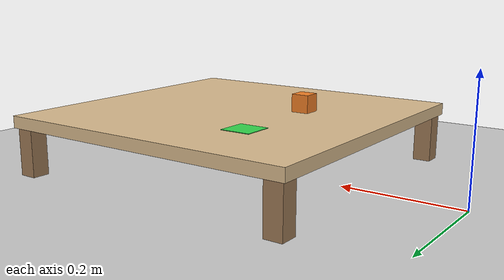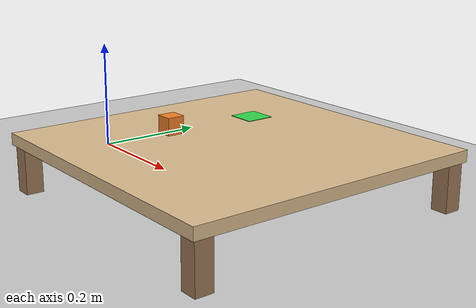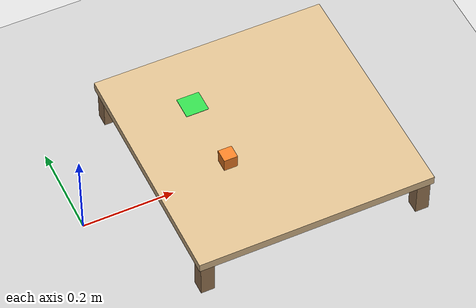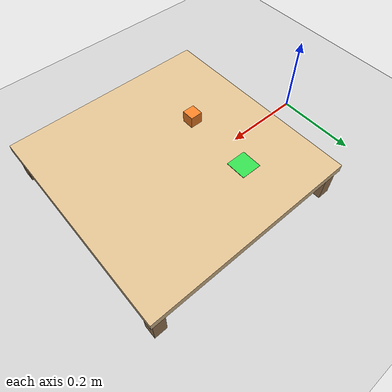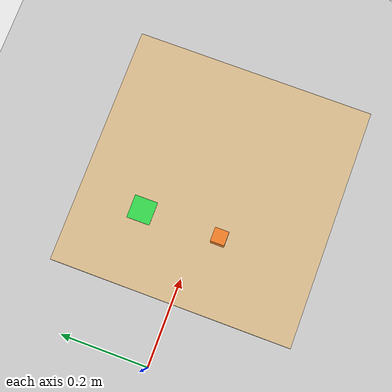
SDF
<?xml version="1.0" ?>
<sdf version="1.6">
  <world name="scara_world">
    <scene>
      <ambient>0.75 0.78 0.82 1</ambient>
      <background>0.78 0.85 0.95 1</background>
      <shadows>true</shadows>
    </scene>

    <light type="directional" name="sun">
      <cast_shadows>true</cast_shadows>
      <pose>0 0 3 0 0 0</pose>
      <diffuse>0.95 0.95 0.92 1</diffuse>
      <specular>0.25 0.25 0.25 1</specular>
      <direction>-0.4 0.3 -1</direction>
    </light>

    <physics type="ode">
      <max_step_size>0.001</max_step_size>
      <real_time_update_rate>1000</real_time_update_rate>
      <real_time_factor>1.0</real_time_factor>
      <ode>
        <solver>
          <type>quick</type>
          <iters>80</iters>
          <sor>1.2</sor>
        </solver>
        <constraints>
          <cfm>0.0</cfm>
          <erp>0.2</erp>
          <contact_max_correcting_vel>0.1</contact_max_correcting_vel>
          <contact_surface_layer>0.0005</contact_surface_layer>
        </constraints>
      </ode>
    </physics>

    <gravity>0 0 -9.81</gravity>

    <include>
      <uri>model://ground_plane</uri>
    </include>

    <!-- 工作台：台面 + 四条腿（静态） -->
    <model name="table">
      <static>true</static>
      <link name="top">
        <pose>0.40 0 0.09 0 0 0</pose>
        <collision name="c">
          <geometry><box><size>0.52 0.52 0.02</size></box></geometry>
          <surface><friction><ode><mu>0.9</mu><mu2>0.9</mu2></ode></friction></surface>
        </collision>
        <visual name="v">
          <geometry><box><size>0.52 0.52 0.02</size></box></geometry>
          <material><ambient>0.78 0.66 0.48 1</ambient><diffuse>0.86 0.74 0.56 1</diffuse></material>
        </visual>
      </link>
      <link name="leg1"><pose>0.16 -0.24 0.04 0 0 0</pose>
        <collision><geometry><box><size>0.03 0.03 0.08</size></box></geometry></collision>
        <visual><geometry><box><size>0.03 0.03 0.08</size></box></geometry>
          <material><ambient>0.55 0.42 0.30 1</ambient><diffuse>0.62 0.48 0.34 1</diffuse></material></visual>
      </link>
      <link name="leg2"><pose>0.64 -0.24 0.04 0 0 0</pose>
        <collision><geometry><box><size>0.03 0.03 0.08</size></box></geometry></collision>
        <visual><geometry><box><size>0.03 0.03 0.08</size></box></geometry>
          <material><ambient>0.55 0.42 0.30 1</ambient><diffuse>0.62 0.48 0.34 1</diffuse></material></visual>
      </link>
      <link name="leg3"><pose>0.16 0.24 0.04 0 0 0</pose>
        <collision><geometry><box><size>0.03 0.03 0.08</size></box></geometry></collision>
        <visual><geometry><box><size>0.03 0.03 0.08</size></box></geometry>
          <material><ambient>0.55 0.42 0.30 1</ambient><diffuse>0.62 0.48 0.34 1</diffuse></material></visual>
      </link>
      <link name="leg4"><pose>0.64 0.24 0.04 0 0 0</pose>
        <collision><geometry><box><size>0.03 0.03 0.08</size></box></geometry></collision>
        <visual><geometry><box><size>0.03 0.03 0.08</size></box></geometry>
          <material><ambient>0.55 0.42 0.30 1</ambient><diffuse>0.62 0.48 0.34 1</diffuse></material></visual>
      </link>
    </model>

    <!-- 放置区（绿色标记，静态、无碰撞） -->
    <model name="place_area">
      <static>true</static>
      <link name="link">
        <pose>0.30 0.12 0.1006 0 0 0</pose>
        <visual name="v">
          <geometry><box><size>0.05 0.05 0.001</size></box></geometry>
          <material><ambient>0.15 0.75 0.25 1</ambient><diffuse>0.20 0.85 0.30 1</diffuse></material>
        </visual>
      </link>
    </model>

    <!-- 抓取物块：30 mm、50 g、摩擦 mu=1.2 -->
    <model name="target_box">
      <pose>0.30 -0.05 0.1150 0 0 0</pose>
      <link name="link">
        <inertial>
          <mass>0.05</mass>
          <inertia>
            <ixx>7.5e-6</ixx><iyy>7.5e-6</iyy><izz>7.5e-6</izz>
            <ixy>0</ixy><ixz>0</ixz><iyz>0</iyz>
          </inertia>
        </inertial>
        <collision name="c">
          <geometry><box><size>0.03 0.03 0.03</size></box></geometry>
          <surface>
            <friction><ode><mu>1.2</mu><mu2>1.2</mu2></ode></friction>
            <bounce><restitution_coefficient>0.0</restitution_coefficient></bounce>
          </surface>
        </collision>
        <visual name="v">
          <geometry><box><size>0.03 0.03 0.03</size></box></geometry>
          <material><ambient>0.85 0.42 0.12 1</ambient><diffuse>0.95 0.50 0.15 1</diffuse></material>
        </visual>
      </link>
    </model>
  </world>
</sdf>
